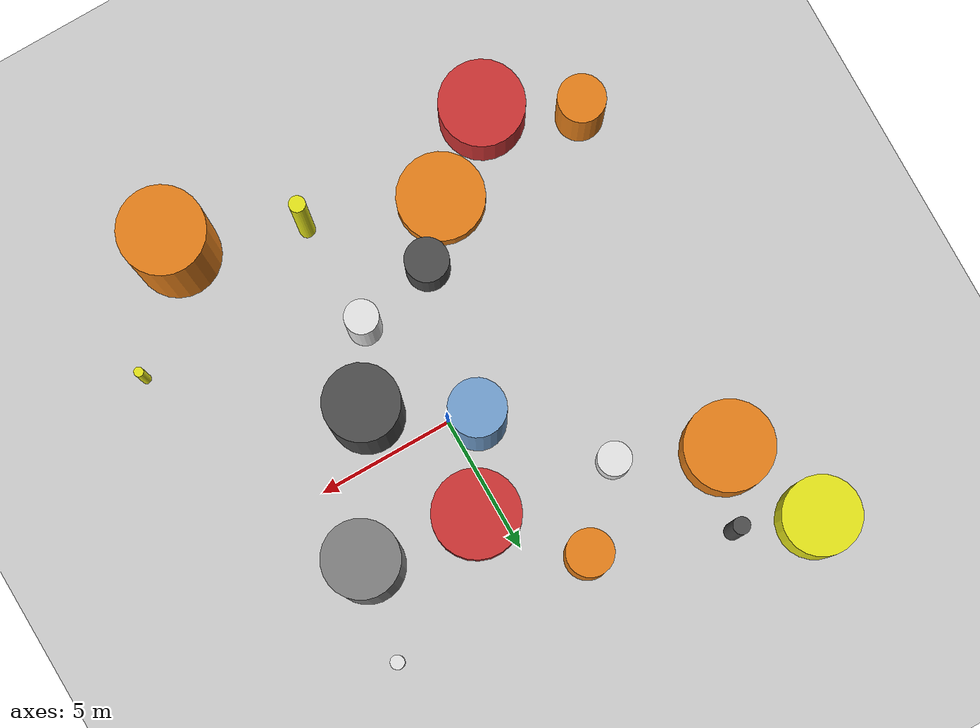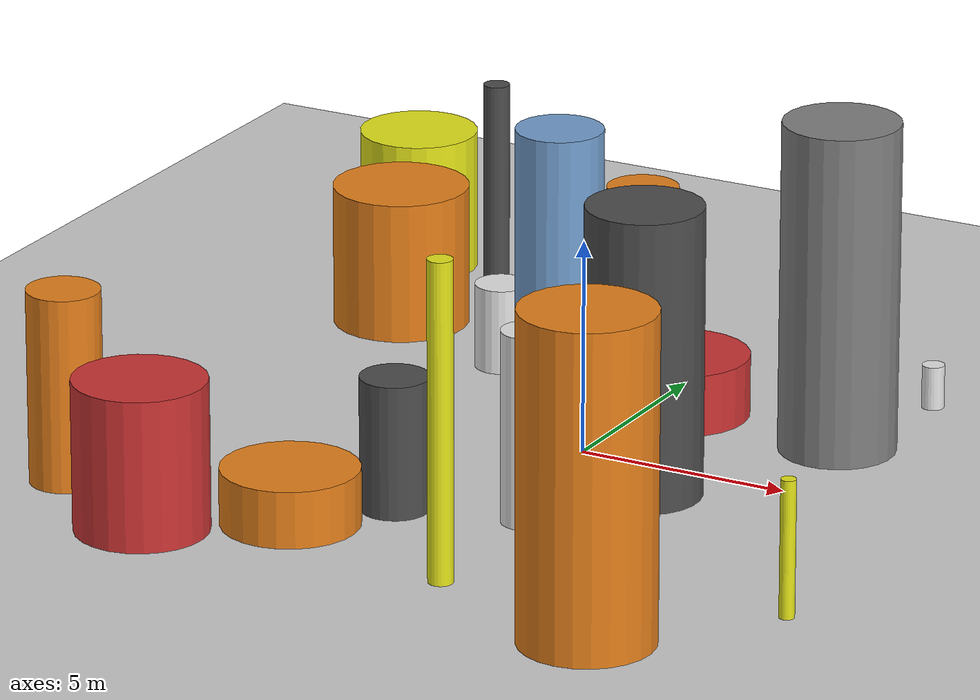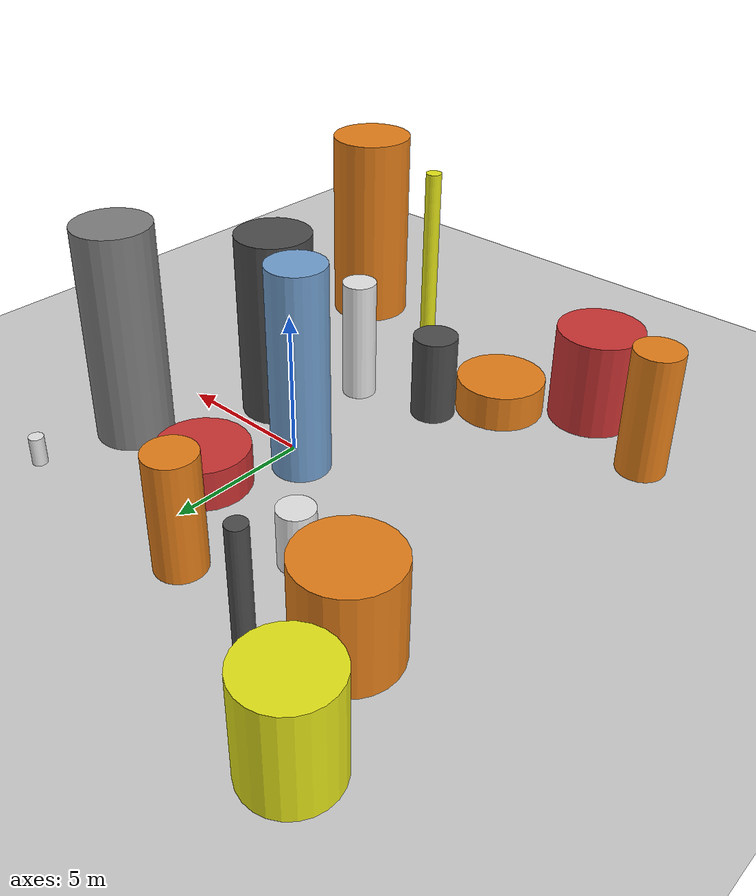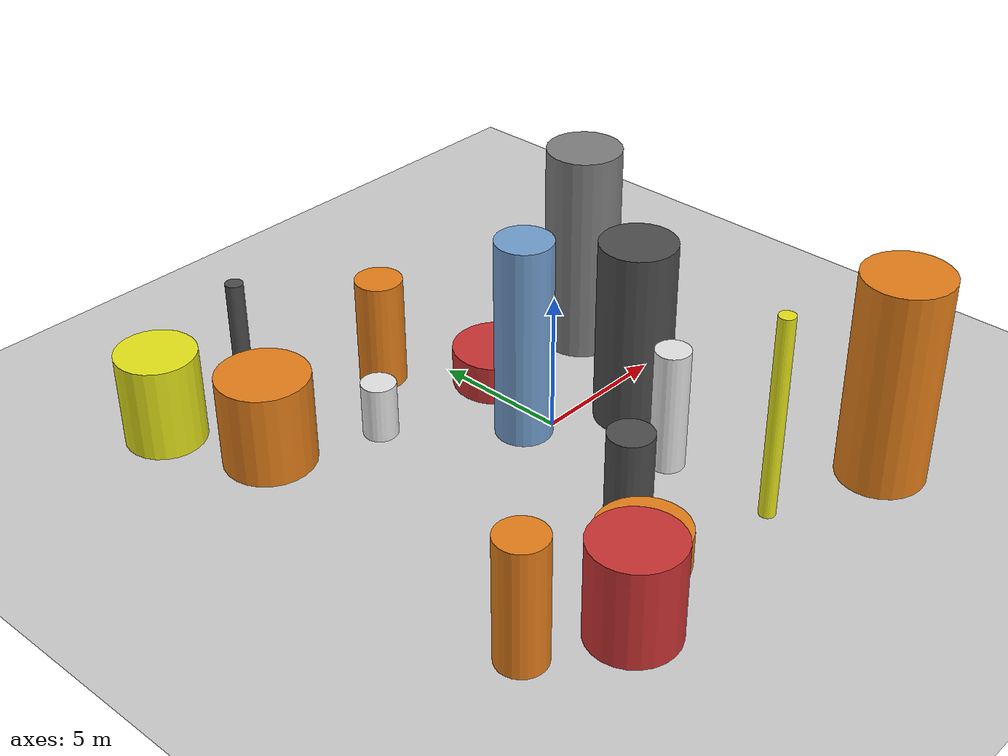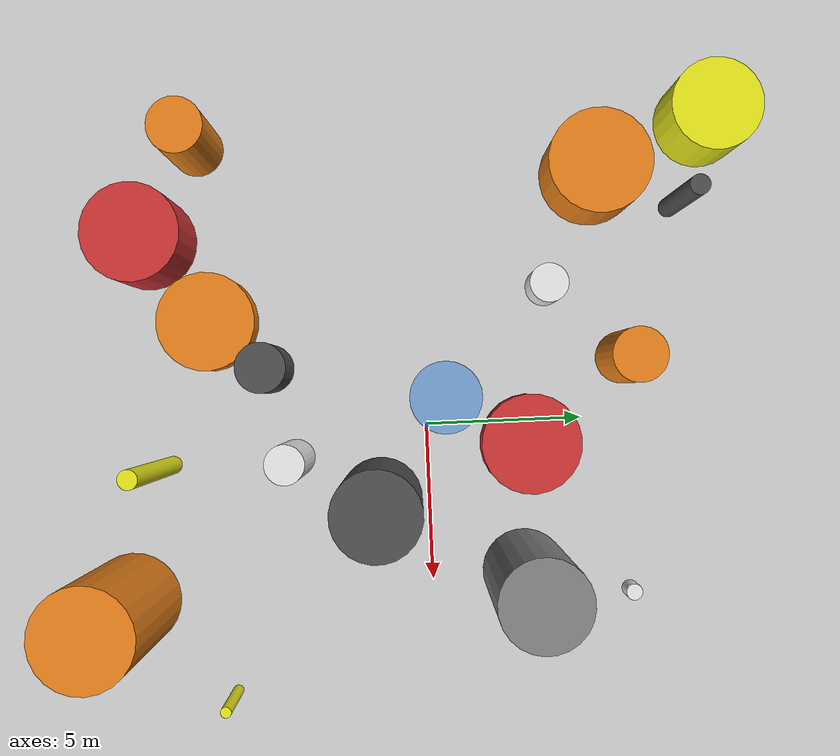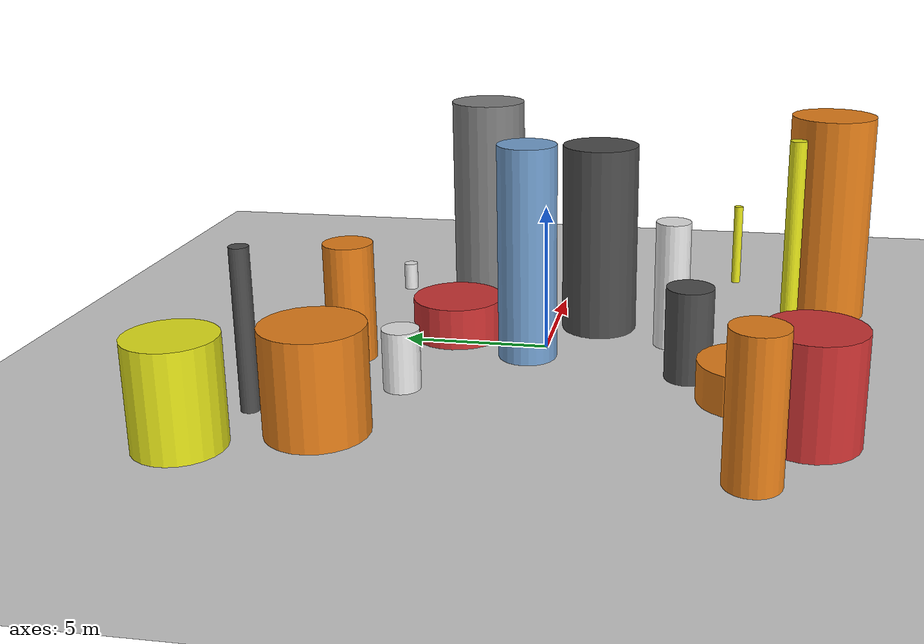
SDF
<?xml version='1.0'?>
<sdf version='1.6'>
  <world name='default'>
    <!-- Sun light -->
    <light name='sun' type='directional'>
      <cast_shadows>1</cast_shadows>
      <pose>0 0 10 0 0 0</pose>
      <diffuse>0.8 0.8 0.8 1</diffuse>
      <specular>0.2 0.2 0.2 1</specular>
      <attenuation>
        <range>1000</range>
        <constant>0.9</constant>
        <linear>0.01</linear>
        <quadratic>0.001</quadratic>
      </attenuation>
      <direction>-0.5 0.1 -0.9</direction>
    </light>

    <!-- Ground plane -->
    <model name='ground_plane'>
      <static>1</static>
      <link name='link'>
        <collision name='collision'>
          <geometry>
            <plane>
              <normal>0 0 1</normal>
              <size>100 100</size>
            </plane>
          </geometry>
          <surface>
            <contact>
              <collide_bitmask>65535</collide_bitmask>
              <ode/>
            </contact>
            <friction>
              <ode>
                <mu>100</mu>
                <mu2>50</mu2>
              </ode>
              <torsional><ode/></torsional>
            </friction>
            <bounce/>
          </surface>
          <max_contacts>10</max_contacts>
        </collision>
        <visual name='visual'>
          <cast_shadows>0</cast_shadows>
          <geometry>
            <plane>
              <normal>0 0 1</normal>
              <size>100 100</size>
            </plane>
          </geometry>
          <material>
            <script>
              <uri>file://media/materials/scripts/gazebo.material</uri>
              <n>Gazebo/Grey</n>
            </script>
          </material>
        </visual>
      </link>
    </model>

    <!-- Environment -->
    <magnetic_field>6e-06 2.3e-05 -4.2e-05</magnetic_field>
    <atmosphere type='adiabatic'/>
    <physics name='default_physics' default='0' type='ode'>
      <gravity>0 0 -9.8</gravity>
      <max_step_size>0.004</max_step_size>
      <real_time_factor>1</real_time_factor>
      <real_time_update_rate>250</real_time_update_rate>
    </physics>
    <scene>
      <ambient>0.4 0.4 0.4 1</ambient>
      <background>0.7 0.7 0.7 1</background>
      <shadows>1</shadows>
    </scene>
    <wind/>
    <spherical_coordinates>
      <surface_model>EARTH_WGS84</surface_model>
      <latitude_deg>0</latitude_deg>
      <longitude_deg>0</longitude_deg>
      <elevation>0</elevation>
      <heading_deg>0</heading_deg>
    </spherical_coordinates>

    <!-- ============ OBSTACLES (18) ============ -->
    <model name='obs_00'>
      <static>1</static>
      <link name='link'>
        <visual name='visual'>
          <geometry>
            <cylinder>
              <radius>1.5935</radius>
              <length>3.3361</length>
            </cylinder>
          </geometry>
          <material>
            <script>
              <n>Gazebo/Orange</n>
              <uri>file://media/materials/scripts/gazebo.material</uri>
            </script>
            <ambient>0.9 0.5 0.1 1</ambient>
          </material>
        </visual>
        <collision name='collision'>
          <geometry>
            <cylinder>
              <radius>1.5935</radius>
              <length>3.3361</length>
            </cylinder>
          </geometry>
          <max_contacts>10</max_contacts>
          <surface>
            <contact><ode/></contact>
            <bounce/>
            <friction>
              <ode><mu>1</mu><mu2>1</mu2></ode>
              <torsional><ode/></torsional>
            </friction>
          </surface>
        </collision>
      </link>
      <pose>-7.7896 5.6027 1.6681 0 0 1.6770</pose>
    </model>

    <model name='obs_01'>
      <static>1</static>
      <link name='link'>
        <visual name='visual'>
          <geometry>
            <cylinder>
              <radius>0.2589</radius>
              <length>1.0235</length>
            </cylinder>
          </geometry>
          <material>
            <script>
              <n>Gazebo/White</n>
              <uri>file://media/materials/scripts/gazebo.material</uri>
            </script>
            <ambient>0.9 0.9 0.9 1</ambient>
          </material>
        </visual>
        <collision name='collision'>
          <geometry>
            <cylinder>
              <radius>0.2589</radius>
              <length>1.0235</length>
            </cylinder>
          </geometry>
          <max_contacts>10</max_contacts>
          <surface>
            <contact><ode/></contact>
            <bounce/>
            <friction>
              <ode><mu>1</mu><mu2>1</mu2></ode>
              <torsional><ode/></torsional>
            </friction>
          </surface>
        </collision>
      </link>
      <pose>5.6078 6.3486 0.5117 0 0 2.9403</pose>
    </model>

    <model name='obs_02'>
      <static>1</static>
      <link name='link'>
        <visual name='visual'>
          <geometry>
            <cylinder>
              <radius>0.8425</radius>
              <length>4.5100</length>
            </cylinder>
          </geometry>
          <material>
            <script>
              <n>Gazebo/Orange</n>
              <uri>file://media/materials/scripts/gazebo.material</uri>
            </script>
            <ambient>0.9 0.5 0.1 1</ambient>
          </material>
        </visual>
        <collision name='collision'>
          <geometry>
            <cylinder>
              <radius>0.8425</radius>
              <length>4.5100</length>
            </cylinder>
          </geometry>
          <max_contacts>10</max_contacts>
          <surface>
            <contact><ode/></contact>
            <bounce/>
            <friction>
              <ode><mu>1</mu><mu2>1</mu2></ode>
              <torsional><ode/></torsional>
            </friction>
          </surface>
        </collision>
      </link>
      <pose>-9.2146 -7.0006 2.2550 0 0 0.6870</pose>
    </model>

    <model name='obs_03'>
      <static>1</static>
      <link name='link'>
        <visual name='visual'>
          <geometry>
            <cylinder>
              <radius>1.3397</radius>
              <length>7.7189</length>
            </cylinder>
          </geometry>
          <material>
            <script>
              <n>Gazebo/Grey</n>
              <uri>file://media/materials/scripts/gazebo.material</uri>
            </script>
            <ambient>0.5 0.5 0.5 1</ambient>
          </material>
        </visual>
        <collision name='collision'>
          <geometry>
            <cylinder>
              <radius>1.3397</radius>
              <length>7.7189</length>
            </cylinder>
          </geometry>
          <max_contacts>10</max_contacts>
          <surface>
            <contact><ode/></contact>
            <bounce/>
            <friction>
              <ode><mu>1</mu><mu2>1</mu2></ode>
              <torsional><ode/></torsional>
            </friction>
          </surface>
        </collision>
      </link>
      <pose>4.8670 2.9510 3.8594 0 0 0.4169</pose>
    </model>

    <model name='obs_04'>
      <static>1</static>
      <link name='link'>
        <visual name='visual'>
          <geometry>
            <cylinder>
              <radius>0.9984</radius>
              <length>7.3441</length>
            </cylinder>
          </geometry>
          <material>
            <script>
              <n>Gazebo/Blue</n>
              <uri>file://media/materials/scripts/gazebo.material</uri>
            </script>
            <ambient>0.447 0.624 0.812 1</ambient>
          </material>
        </visual>
        <collision name='collision'>
          <geometry>
            <cylinder>
              <radius>0.9984</radius>
              <length>7.3441</length>
            </cylinder>
          </geometry>
          <max_contacts>10</max_contacts>
          <surface>
            <contact><ode/></contact>
            <bounce/>
            <friction>
              <ode><mu>1</mu><mu2>1</mu2></ode>
              <torsional><ode/></torsional>
            </friction>
          </surface>
        </collision>
      </link>
      <pose>-0.8904 0.5120 3.6721 0 0 1.7795</pose>
    </model>

    <model name='obs_05'>
      <static>1</static>
      <link name='link'>
        <visual name='visual'>
          <geometry>
            <cylinder>
              <radius>1.3322</radius>
              <length>6.7290</length>
            </cylinder>
          </geometry>
          <material>
            <script>
              <n>Gazebo/DarkGrey</n>
              <uri>file://media/materials/scripts/gazebo.material</uri>
            </script>
            <ambient>0.3 0.3 0.3 1</ambient>
          </material>
        </visual>
        <collision name='collision'>
          <geometry>
            <cylinder>
              <radius>1.3322</radius>
              <length>6.7290</length>
            </cylinder>
          </geometry>
          <max_contacts>10</max_contacts>
          <surface>
            <contact><ode/></contact>
            <bounce/>
            <friction>
              <ode><mu>1</mu><mu2>1</mu2></ode>
              <torsional><ode/></torsional>
            </friction>
          </surface>
        </collision>
      </link>
      <pose>2.3328 -1.5657 3.3645 0 0 1.1795</pose>
    </model>

    <model name='obs_06'>
      <static>1</static>
      <link name='link'>
        <visual name='visual'>
          <geometry>
            <cylinder>
              <radius>0.2862</radius>
              <length>7.3536</length>
            </cylinder>
          </geometry>
          <material>
            <script>
              <n>Gazebo/Yellow</n>
              <uri>file://media/materials/scripts/gazebo.material</uri>
            </script>
            <ambient>0.9 0.9 0.1 1</ambient>
          </material>
        </visual>
        <collision name='collision'>
          <geometry>
            <cylinder>
              <radius>0.2862</radius>
              <length>7.3536</length>
            </cylinder>
          </geometry>
          <max_contacts>10</max_contacts>
          <surface>
            <contact><ode/></contact>
            <bounce/>
            <friction>
              <ode><mu>1</mu><mu2>1</mu2></ode>
              <torsional><ode/></torsional>
            </friction>
          </surface>
        </collision>
      </link>
      <pose>0.9432 -8.2522 3.6768 0 0 0.0625</pose>
    </model>

    <model name='obs_07'>
      <static>1</static>
      <link name='link'>
        <visual name='visual'>
          <geometry>
            <cylinder>
              <radius>0.8412</radius>
              <length>4.0252</length>
            </cylinder>
          </geometry>
          <material>
            <script>
              <n>Gazebo/Orange</n>
              <uri>file://media/materials/scripts/gazebo.material</uri>
            </script>
            <ambient>0.9 0.5 0.1 1</ambient>
          </material>
        </visual>
        <collision name='collision'>
          <geometry>
            <cylinder>
              <radius>0.8412</radius>
              <length>4.0252</length>
            </cylinder>
          </geometry>
          <max_contacts>10</max_contacts>
          <surface>
            <contact><ode/></contact>
            <bounce/>
            <friction>
              <ode><mu>1</mu><mu2>1</mu2></ode>
              <torsional><ode/></torsional>
            </friction>
          </surface>
        </collision>
      </link>
      <pose>-1.8726 6.4112 2.0126 0 0 0.8945</pose>
    </model>

    <model name='obs_08'>
      <static>1</static>
      <link name='link'>
        <visual name='visual'>
          <geometry>
            <cylinder>
              <radius>1.5860</radius>
              <length>1.4317</length>
            </cylinder>
          </geometry>
          <material>
            <script>
              <n>Gazebo/Red</n>
              <uri>file://media/materials/scripts/gazebo.material</uri>
            </script>
            <ambient>0.8 0.2 0.2 1</ambient>
          </material>
        </visual>
        <collision name='collision'>
          <geometry>
            <cylinder>
              <radius>1.5860</radius>
              <length>1.4317</length>
            </cylinder>
          </geometry>
          <max_contacts>10</max_contacts>
          <surface>
            <contact><ode/></contact>
            <bounce/>
            <friction>
              <ode><mu>1</mu><mu2>1</mu2></ode>
              <torsional><ode/></torsional>
            </friction>
          </surface>
        </collision>
      </link>
      <pose>0.7491 3.2878 0.7159 0 0 1.1060</pose>
    </model>

    <model name='obs_09'>
      <static>1</static>
      <link name='link'>
        <visual name='visual'>
          <geometry>
            <cylinder>
              <radius>0.7833</radius>
              <length>3.1013</length>
            </cylinder>
          </geometry>
          <material>
            <script>
              <n>Gazebo/DarkGrey</n>
              <uri>file://media/materials/scripts/gazebo.material</uri>
            </script>
            <ambient>0.3 0.3 0.3 1</ambient>
          </material>
        </visual>
        <collision name='collision'>
          <geometry>
            <cylinder>
              <radius>0.7833</radius>
              <length>3.1013</length>
            </cylinder>
          </geometry>
          <max_contacts>10</max_contacts>
          <surface>
            <contact><ode/></contact>
            <bounce/>
            <friction>
              <ode><mu>1</mu><mu2>1</mu2></ode>
              <torsional><ode/></torsional>
            </friction>
          </surface>
        </collision>
      </link>
      <pose>-2.0175 -4.9757 1.5506 0 0 2.1687</pose>
    </model>

    <model name='obs_10'>
      <static>1</static>
      <link name='link'>
        <visual name='visual'>
          <geometry>
            <cylinder>
              <radius>0.3052</radius>
              <length>5.2262</length>
            </cylinder>
          </geometry>
          <material>
            <script>
              <n>Gazebo/DarkGrey</n>
              <uri>file://media/materials/scripts/gazebo.material</uri>
            </script>
            <ambient>0.3 0.3 0.3 1</ambient>
          </material>
        </visual>
        <collision name='collision'>
          <geometry>
            <cylinder>
              <radius>0.3052</radius>
              <length>5.2262</length>
            </cylinder>
          </geometry>
          <max_contacts>10</max_contacts>
          <surface>
            <contact><ode/></contact>
            <bounce/>
            <friction>
              <ode><mu>1</mu><mu2>1</mu2></ode>
              <torsional><ode/></torsional>
            </friction>
          </surface>
        </collision>
      </link>
      <pose>-6.6469 8.1443 2.6131 0 0 1.6585</pose>
    </model>

    <model name='obs_11'>
      <static>1</static>
      <link name='link'>
        <visual name='visual'>
          <geometry>
            <cylinder>
              <radius>0.6063</radius>
              <length>4.4506</length>
            </cylinder>
          </geometry>
          <material>
            <script>
              <n>Gazebo/White</n>
              <uri>file://media/materials/scripts/gazebo.material</uri>
            </script>
            <ambient>0.9 0.9 0.9 1</ambient>
          </material>
        </visual>
        <collision name='collision'>
          <geometry>
            <cylinder>
              <radius>0.6063</radius>
              <length>4.4506</length>
            </cylinder>
          </geometry>
          <max_contacts>10</max_contacts>
          <surface>
            <contact><ode/></contact>
            <bounce/>
            <friction>
              <ode><mu>1</mu><mu2>1</mu2></ode>
              <torsional><ode/></torsional>
            </friction>
          </surface>
        </collision>
      </link>
      <pose>0.8931 -4.2525 2.2253 0 0 1.4381</pose>
    </model>

    <model name='obs_12'>
      <static>1</static>
      <link name='link'>
        <visual name='visual'>
          <geometry>
            <cylinder>
              <radius>1.5165</radius>
              <length>7.4533</length>
            </cylinder>
          </geometry>
          <material>
            <script>
              <n>Gazebo/Orange</n>
              <uri>file://media/materials/scripts/gazebo.material</uri>
            </script>
            <ambient>0.9 0.5 0.1 1</ambient>
          </material>
        </visual>
        <collision name='collision'>
          <geometry>
            <cylinder>
              <radius>1.5165</radius>
              <length>7.4533</length>
            </cylinder>
          </geometry>
          <max_contacts>10</max_contacts>
          <surface>
            <contact><ode/></contact>
            <bounce/>
            <friction>
              <ode><mu>1</mu><mu2>1</mu2></ode>
              <torsional><ode/></torsional>
            </friction>
          </surface>
        </collision>
      </link>
      <pose>5.2536 -9.7061 3.7267 0 0 2.9147</pose>
    </model>

    <model name='obs_13'>
      <static>1</static>
      <link name='link'>
        <visual name='visual'>
          <geometry>
            <cylinder>
              <radius>1.5642</radius>
              <length>1.3159</length>
            </cylinder>
          </geometry>
          <material>
            <script>
              <n>Gazebo/Orange</n>
              <uri>file://media/materials/scripts/gazebo.material</uri>
            </script>
            <ambient>0.9 0.5 0.1 1</ambient>
          </material>
        </visual>
        <collision name='collision'>
          <geometry>
            <cylinder>
              <radius>1.5642</radius>
              <length>1.3159</length>
            </cylinder>
          </geometry>
          <max_contacts>10</max_contacts>
          <surface>
            <contact><ode/></contact>
            <bounce/>
            <friction>
              <ode><mu>1</mu><mu2>1</mu2></ode>
              <torsional><ode/></torsional>
            </friction>
          </surface>
        </collision>
      </link>
      <pose>-3.5924 -6.8320 0.6579 0 0 2.4256</pose>
    </model>

    <model name='obs_14'>
      <static>1</static>
      <link name='link'>
        <visual name='visual'>
          <geometry>
            <cylinder>
              <radius>1.3978</radius>
              <length>3.3616</length>
            </cylinder>
          </geometry>
          <material>
            <script>
              <n>Gazebo/Yellow</n>
              <uri>file://media/materials/scripts/gazebo.material</uri>
            </script>
            <ambient>0.9 0.9 0.1 1</ambient>
          </material>
        </visual>
        <collision name='collision'>
          <geometry>
            <cylinder>
              <radius>1.3978</radius>
              <length>3.3616</length>
            </cylinder>
          </geometry>
          <max_contacts>10</max_contacts>
          <surface>
            <contact><ode/></contact>
            <bounce/>
            <friction>
              <ode><mu>1</mu><mu2>1</mu2></ode>
              <torsional><ode/></torsional>
            </friction>
          </surface>
        </collision>
      </link>
      <pose>-9.3196 9.1892 1.6808 0 0 1.6955</pose>
    </model>

    <model name='obs_15'>
      <static>1</static>
      <link name='link'>
        <visual name='visual'>
          <geometry>
            <cylinder>
              <radius>0.6129</radius>
              <length>2.0119</length>
            </cylinder>
          </geometry>
          <material>
            <script>
              <n>Gazebo/White</n>
              <uri>file://media/materials/scripts/gazebo.material</uri>
            </script>
            <ambient>0.9 0.9 0.9 1</ambient>
          </material>
        </visual>
        <collision name='collision'>
          <geometry>
            <cylinder>
              <radius>0.6129</radius>
              <length>2.0119</length>
            </cylinder>
          </geometry>
          <max_contacts>10</max_contacts>
          <surface>
            <contact><ode/></contact>
            <bounce/>
            <friction>
              <ode><mu>1</mu><mu2>1</mu2></ode>
              <torsional><ode/></torsional>
            </friction>
          </surface>
        </collision>
      </link>
      <pose>-4.2657 4.0106 1.0059 0 0 0.1327</pose>
    </model>

    <model name='obs_16'>
      <static>1</static>
      <link name='link'>
        <visual name='visual'>
          <geometry>
            <cylinder>
              <radius>0.1711</radius>
              <length>3.1503</length>
            </cylinder>
          </geometry>
          <material>
            <script>
              <n>Gazebo/Yellow</n>
              <uri>file://media/materials/scripts/gazebo.material</uri>
            </script>
            <ambient>0.9 0.9 0.1 1</ambient>
          </material>
        </visual>
        <collision name='collision'>
          <geometry>
            <cylinder>
              <radius>0.1711</radius>
              <length>3.1503</length>
            </cylinder>
          </geometry>
          <max_contacts>10</max_contacts>
          <surface>
            <contact><ode/></contact>
            <bounce/>
            <friction>
              <ode><mu>1</mu><mu2>1</mu2></ode>
              <torsional><ode/></torsional>
            </friction>
          </surface>
        </collision>
      </link>
      <pose>8.3403 -6.4806 1.5751 0 0 0.4494</pose>
    </model>

    <model name='obs_17'>
      <static>1</static>
      <link name='link'>
        <visual name='visual'>
          <geometry>
            <cylinder>
              <radius>1.5119</radius>
              <length>3.4916</length>
            </cylinder>
          </geometry>
          <material>
            <script>
              <n>Gazebo/Red</n>
              <uri>file://media/materials/scripts/gazebo.material</uri>
            </script>
            <ambient>0.8 0.2 0.2 1</ambient>
          </material>
        </visual>
        <collision name='collision'>
          <geometry>
            <cylinder>
              <radius>1.5119</radius>
              <length>3.4916</length>
            </cylinder>
          </geometry>
          <max_contacts>10</max_contacts>
          <surface>
            <contact><ode/></contact>
            <bounce/>
            <friction>
              <ode><mu>1</mu><mu2>1</mu2></ode>
              <torsional><ode/></torsional>
            </friction>
          </surface>
        </collision>
      </link>
      <pose>-6.2721 -8.6684 1.7458 0 0 0.8352</pose>
    </model>

    <!-- GUI camera -->
    <gui fullscreen='0'>
      <camera name='user_camera'>
        <pose>-15 0 18 0 0.85 0.15</pose>
        <view_controller>orbit</view_controller>
        <projection_type>perspective</projection_type>
      </camera>
    </gui>
  </world>
</sdf>
